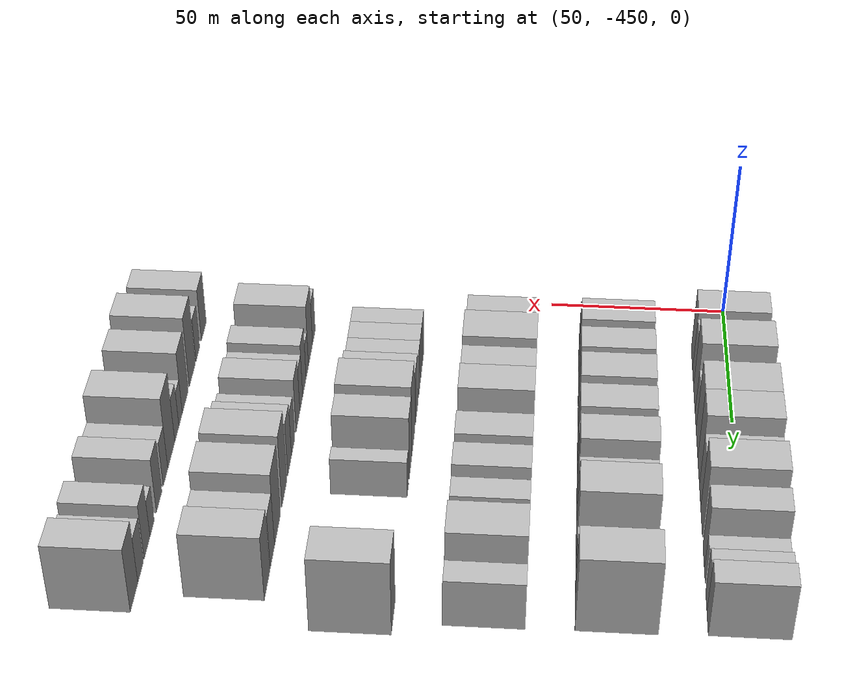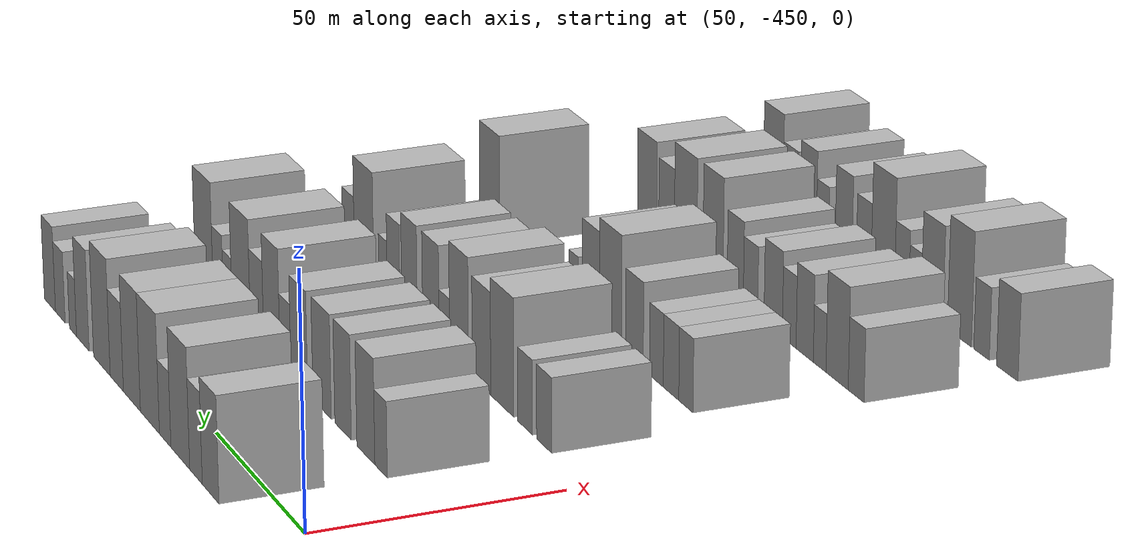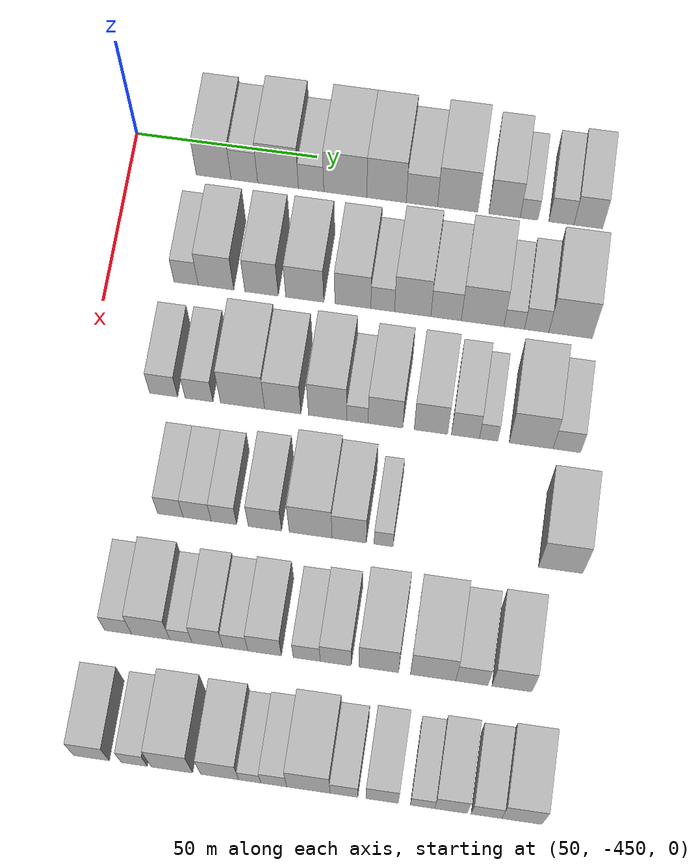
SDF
<sdf version="1.6">
 <world name="default">
  <model name="building_14">
   <static>1</static>
   <pose>50.0000 -426.9639 0 0.000000 0.000000 0.000000</pose>
   <link name="link">
    <pose>0 0 10.50 0 0 0</pose>
    <collision name="collision"><geometry><box><size>20.0000 9.5922 21.0000</size></box></geometry></collision>
    <visual name="visual">
     <cast_shadows>0</cast_shadows>
     <geometry><box><size>20.0000 9.5922 21.0000</size></box></geometry>
     <material>
      <script>
       <uri>model://HANNAS_wall/materials/scripts</uri>
       <uri>model://HANNAS_wall/materials/textures</uri>
       <name>vrc/HANNAS_wall</name>
      </script>
     </material>
    </visual>
   </link>
  </model>
  <model name="building_15">
   <static>1</static>
   <pose>50.0000 -418.4892 0 0.000000 0.000000 0.000000</pose>
   <link name="link">
    <pose>0 0 9.00 0 0 0</pose>
    <collision name="collision"><geometry><box><size>20.0000 7.3571 18.0000</size></box></geometry></collision>
    <visual name="visual">
     <cast_shadows>0</cast_shadows>
     <geometry><box><size>20.0000 7.3571 18.0000</size></box></geometry>
     <material>
      <script>
       <uri>model://HANNAS_wall/materials/scripts</uri>
       <uri>model://HANNAS_wall/materials/textures</uri>
       <name>vrc/HANNAS_wall</name>
      </script>
     </material>
    </visual>
   </link>
  </model>
  <model name="building_16">
   <static>1</static>
   <pose>50.0000 -409.1941 0 0.000000 0.000000 0.000000</pose>
   <link name="link">
    <pose>0 0 12.00 0 0 0</pose>
    <collision name="collision"><geometry><box><size>20.0000 11.2333 24.0000</size></box></geometry></collision>
    <visual name="visual">
     <cast_shadows>0</cast_shadows>
     <geometry><box><size>20.0000 11.2333 24.0000</size></box></geometry>
     <material>
      <script>
       <uri>model://HANNAS_wall/materials/scripts</uri>
       <uri>model://HANNAS_wall/materials/textures</uri>
       <name>vrc/HANNAS_wall</name>
      </script>
     </material>
    </visual>
   </link>
  </model>
  <model name="building_17">
   <static>1</static>
   <pose>50.0000 -400.0829 0 0.000000 0.000000 0.000000</pose>
   <link name="link">
    <pose>0 0 7.50 0 0 0</pose>
    <collision name="collision"><geometry><box><size>20.0000 6.9891 15.0000</size></box></geometry></collision>
    <visual name="visual">
     <cast_shadows>0</cast_shadows>
     <geometry><box><size>20.0000 6.9891 15.0000</size></box></geometry>
     <material>
      <script>
       <uri>model://HANNAS_wall/materials/scripts</uri>
       <uri>model://HANNAS_wall/materials/textures</uri>
       <name>vrc/HANNAS_wall</name>
      </script>
     </material>
    </visual>
   </link>
  </model>
  <model name="building_18">
   <static>1</static>
   <pose>50.0000 -390.6730 0 0.000000 0.000000 0.000000</pose>
   <link name="link">
    <pose>0 0 12.00 0 0 0</pose>
    <collision name="collision"><geometry><box><size>20.0000 11.8306 24.0000</size></box></geometry></collision>
    <visual name="visual">
     <cast_shadows>0</cast_shadows>
     <geometry><box><size>20.0000 11.8306 24.0000</size></box></geometry>
     <material>
      <script>
       <uri>model://HANNAS_wall/materials/scripts</uri>
       <uri>model://HANNAS_wall/materials/textures</uri>
       <name>vrc/HANNAS_wall</name>
      </script>
     </material>
    </visual>
   </link>
  </model>
  <model name="building_19">
   <static>1</static>
   <pose>50.0000 -379.3569 0 0.000000 0.000000 0.000000</pose>
   <link name="link">
    <pose>0 0 12.00 0 0 0</pose>
    <collision name="collision"><geometry><box><size>20.0000 10.8015 24.0000</size></box></geometry></collision>
    <visual name="visual">
     <cast_shadows>0</cast_shadows>
     <geometry><box><size>20.0000 10.8015 24.0000</size></box></geometry>
     <material>
      <script>
       <uri>model://HANNAS_wall/materials/scripts</uri>
       <uri>model://HANNAS_wall/materials/textures</uri>
       <name>vrc/HANNAS_wall</name>
      </script>
     </material>
    </visual>
   </link>
  </model>
  <model name="building_20">
   <static>1</static>
   <pose>50.0000 -369.6815 0 0.000000 0.000000 0.000000</pose>
   <link name="link">
    <pose>0 0 9.00 0 0 0</pose>
    <collision name="collision"><geometry><box><size>20.0000 8.5493 18.0000</size></box></geometry></collision>
    <visual name="visual">
     <cast_shadows>0</cast_shadows>
     <geometry><box><size>20.0000 8.5493 18.0000</size></box></geometry>
     <material>
      <script>
       <uri>model://HANNAS_wall/materials/scripts</uri>
       <uri>model://HANNAS_wall/materials/textures</uri>
       <name>vrc/HANNAS_wall</name>
      </script>
     </material>
    </visual>
   </link>
  </model>
  <model name="building_21">
   <static>1</static>
   <pose>50.0000 -359.9097 0 0.000000 0.000000 0.000000</pose>
   <link name="link">
    <pose>0 0 12.00 0 0 0</pose>
    <collision name="collision"><geometry><box><size>20.0000 10.9943 24.0000</size></box></geometry></collision>
    <visual name="visual">
     <cast_shadows>0</cast_shadows>
     <geometry><box><size>20.0000 10.9943 24.0000</size></box></geometry>
     <material>
      <script>
       <uri>model://HANNAS_wall/materials/scripts</uri>
       <uri>model://HANNAS_wall/materials/textures</uri>
       <name>vrc/HANNAS_wall</name>
      </script>
     </material>
    </visual>
   </link>
  </model>
  <model name="building_22">
   <static>1</static>
   <pose>50.0000 -347.1390 0 0.000000 0.000000 0.000000</pose>
   <link name="link">
    <pose>0 0 10.50 0 0 0</pose>
    <collision name="collision"><geometry><box><size>20.0000 8.5470 21.0000</size></box></geometry></collision>
    <visual name="visual">
     <cast_shadows>0</cast_shadows>
     <geometry><box><size>20.0000 8.5470 21.0000</size></box></geometry>
     <material>
      <script>
       <uri>model://HANNAS_wall/materials/scripts</uri>
       <uri>model://HANNAS_wall/materials/textures</uri>
       <name>vrc/HANNAS_wall</name>
      </script>
     </material>
    </visual>
   </link>
  </model>
  <model name="building_23">
   <static>1</static>
   <pose>50.0000 -340.4479 0 0.000000 0.000000 0.000000</pose>
   <link name="link">
    <pose>0 0 6.00 0 0 0</pose>
    <collision name="collision"><geometry><box><size>20.0000 4.8352 12.0000</size></box></geometry></collision>
    <visual name="visual">
     <cast_shadows>0</cast_shadows>
     <geometry><box><size>20.0000 4.8352 12.0000</size></box></geometry>
     <material>
      <script>
       <uri>model://HANNAS_wall/materials/scripts</uri>
       <uri>model://HANNAS_wall/materials/textures</uri>
       <name>vrc/HANNAS_wall</name>
      </script>
     </material>
    </visual>
   </link>
  </model>
  <model name="building_24">
   <static>1</static>
   <pose>50.0000 -331.6425 0 0.000000 0.000000 0.000000</pose>
   <link name="link">
    <pose>0 0 7.50 0 0 0</pose>
    <collision name="collision"><geometry><box><size>20.0000 6.7757 15.0000</size></box></geometry></collision>
    <visual name="visual">
     <cast_shadows>0</cast_shadows>
     <geometry><box><size>20.0000 6.7757 15.0000</size></box></geometry>
     <material>
      <script>
       <uri>model://HANNAS_wall/materials/scripts</uri>
       <uri>model://HANNAS_wall/materials/textures</uri>
       <name>vrc/HANNAS_wall</name>
      </script>
     </material>
    </visual>
   </link>
  </model>
  <model name="building_25">
   <static>1</static>
   <pose>50.0000 -324.3452 0 0.000000 0.000000 0.000000</pose>
   <link name="link">
    <pose>0 0 9.00 0 0 0</pose>
    <collision name="collision"><geometry><box><size>20.0000 7.8188 18.0000</size></box></geometry></collision>
    <visual name="visual">
     <cast_shadows>0</cast_shadows>
     <geometry><box><size>20.0000 7.8188 18.0000</size></box></geometry>
     <material>
      <script>
       <uri>model://HANNAS_wall/materials/scripts</uri>
       <uri>model://HANNAS_wall/materials/textures</uri>
       <name>vrc/HANNAS_wall</name>
      </script>
     </material>
    </visual>
   </link>
  </model>
  <model name="building_132">
   <static>1</static>
   <pose>82.0000 -428.9837 0 0.000000 0.000000 0.000000</pose>
   <link name="link">
    <pose>0 0 7.50 0 0 0</pose>
    <collision name="collision"><geometry><box><size>20.0000 6.5481 15.0000</size></box></geometry></collision>
    <visual name="visual">
     <cast_shadows>0</cast_shadows>
     <geometry><box><size>20.0000 6.5481 15.0000</size></box></geometry>
     <material>
      <script>
       <uri>model://HANNAS_wall/materials/scripts</uri>
       <uri>model://HANNAS_wall/materials/textures</uri>
       <name>vrc/HANNAS_wall</name>
      </script>
     </material>
    </visual>
   </link>
  </model>
  <model name="building_133">
   <static>1</static>
   <pose>82.0000 -420.8893 0 0.000000 0.000000 0.000000</pose>
   <link name="link">
    <pose>0 0 10.50 0 0 0</pose>
    <collision name="collision"><geometry><box><size>20.0000 9.6407 21.0000</size></box></geometry></collision>
    <visual name="visual">
     <cast_shadows>0</cast_shadows>
     <geometry><box><size>20.0000 9.6407 21.0000</size></box></geometry>
     <material>
      <script>
       <uri>model://HANNAS_wall/materials/scripts</uri>
       <uri>model://HANNAS_wall/materials/textures</uri>
       <name>vrc/HANNAS_wall</name>
      </script>
     </material>
    </visual>
   </link>
  </model>
  <model name="building_134">
   <static>1</static>
   <pose>82.0000 -408.5473 0 0.000000 0.000000 0.000000</pose>
   <link name="link">
    <pose>0 0 10.50 0 0 0</pose>
    <collision name="collision"><geometry><box><size>20.0000 9.0432 21.0000</size></box></geometry></collision>
    <visual name="visual">
     <cast_shadows>0</cast_shadows>
     <geometry><box><size>20.0000 9.0432 21.0000</size></box></geometry>
     <material>
      <script>
       <uri>model://HANNAS_wall/materials/scripts</uri>
       <uri>model://HANNAS_wall/materials/textures</uri>
       <name>vrc/HANNAS_wall</name>
      </script>
     </material>
    </visual>
   </link>
  </model>
  <model name="building_135">
   <static>1</static>
   <pose>82.0000 -396.8866 0 0.000000 0.000000 0.000000</pose>
   <link name="link">
    <pose>0 0 10.50 0 0 0</pose>
    <collision name="collision"><geometry><box><size>20.0000 10.2783 21.0000</size></box></geometry></collision>
    <visual name="visual">
     <cast_shadows>0</cast_shadows>
     <geometry><box><size>20.0000 10.2783 21.0000</size></box></geometry>
     <material>
      <script>
       <uri>model://HANNAS_wall/materials/scripts</uri>
       <uri>model://HANNAS_wall/materials/textures</uri>
       <name>vrc/HANNAS_wall</name>
      </script>
     </material>
    </visual>
   </link>
  </model>
  <model name="building_136">
   <static>1</static>
   <pose>82.0000 -383.9204 0 0.000000 0.000000 0.000000</pose>
   <link name="link">
    <pose>0 0 10.50 0 0 0</pose>
    <collision name="collision"><geometry><box><size>20.0000 9.6540 21.0000</size></box></geometry></collision>
    <visual name="visual">
     <cast_shadows>0</cast_shadows>
     <geometry><box><size>20.0000 9.6540 21.0000</size></box></geometry>
     <material>
      <script>
       <uri>model://HANNAS_wall/materials/scripts</uri>
       <uri>model://HANNAS_wall/materials/textures</uri>
       <name>vrc/HANNAS_wall</name>
      </script>
     </material>
    </visual>
   </link>
  </model>
  <model name="building_137">
   <static>1</static>
   <pose>82.0000 -375.9150 0 0.000000 0.000000 0.000000</pose>
   <link name="link">
    <pose>0 0 7.50 0 0 0</pose>
    <collision name="collision"><geometry><box><size>20.0000 6.3569 15.0000</size></box></geometry></collision>
    <visual name="visual">
     <cast_shadows>0</cast_shadows>
     <geometry><box><size>20.0000 6.3569 15.0000</size></box></geometry>
     <material>
      <script>
       <uri>model://HANNAS_wall/materials/scripts</uri>
       <uri>model://HANNAS_wall/materials/textures</uri>
       <name>vrc/HANNAS_wall</name>
      </script>
     </material>
    </visual>
   </link>
  </model>
  <model name="building_138">
   <static>1</static>
   <pose>82.0000 -367.8662 0 0.000000 0.000000 0.000000</pose>
   <link name="link">
    <pose>0 0 12.00 0 0 0</pose>
    <collision name="collision"><geometry><box><size>20.0000 9.7405 24.0000</size></box></geometry></collision>
    <visual name="visual">
     <cast_shadows>0</cast_shadows>
     <geometry><box><size>20.0000 9.7405 24.0000</size></box></geometry>
     <material>
      <script>
       <uri>model://HANNAS_wall/materials/scripts</uri>
       <uri>model://HANNAS_wall/materials/textures</uri>
       <name>vrc/HANNAS_wall</name>
      </script>
     </material>
    </visual>
   </link>
  </model>
  <model name="building_139">
   <static>1</static>
   <pose>82.0000 -358.9292 0 0.000000 0.000000 0.000000</pose>
   <link name="link">
    <pose>0 0 9.00 0 0 0</pose>
    <collision name="collision"><geometry><box><size>20.0000 8.1335 18.0000</size></box></geometry></collision>
    <visual name="visual">
     <cast_shadows>0</cast_shadows>
     <geometry><box><size>20.0000 8.1335 18.0000</size></box></geometry>
     <material>
      <script>
       <uri>model://HANNAS_wall/materials/scripts</uri>
       <uri>model://HANNAS_wall/materials/textures</uri>
       <name>vrc/HANNAS_wall</name>
      </script>
     </material>
    </visual>
   </link>
  </model>
  <model name="building_140">
   <static>1</static>
   <pose>82.0000 -349.1648 0 0.000000 0.000000 0.000000</pose>
   <link name="link">
    <pose>0 0 12.00 0 0 0</pose>
    <collision name="collision"><geometry><box><size>20.0000 11.3953 24.0000</size></box></geometry></collision>
    <visual name="visual">
     <cast_shadows>0</cast_shadows>
     <geometry><box><size>20.0000 11.3953 24.0000</size></box></geometry>
     <material>
      <script>
       <uri>model://HANNAS_wall/materials/scripts</uri>
       <uri>model://HANNAS_wall/materials/textures</uri>
       <name>vrc/HANNAS_wall</name>
      </script>
     </material>
    </visual>
   </link>
  </model>
  <model name="building_141">
   <static>1</static>
   <pose>82.0000 -340.7195 0 0.000000 0.000000 0.000000</pose>
   <link name="link">
    <pose>0 0 6.00 0 0 0</pose>
    <collision name="collision"><geometry><box><size>20.0000 5.4953 12.0000</size></box></geometry></collision>
    <visual name="visual">
     <cast_shadows>0</cast_shadows>
     <geometry><box><size>20.0000 5.4953 12.0000</size></box></geometry>
     <material>
      <script>
       <uri>model://HANNAS_wall/materials/scripts</uri>
       <uri>model://HANNAS_wall/materials/textures</uri>
       <name>vrc/HANNAS_wall</name>
      </script>
     </material>
    </visual>
   </link>
  </model>
  <model name="building_142">
   <static>1</static>
   <pose>82.0000 -334.7163 0 0.000000 0.000000 0.000000</pose>
   <link name="link">
    <pose>0 0 7.50 0 0 0</pose>
    <collision name="collision"><geometry><box><size>20.0000 6.5112 15.0000</size></box></geometry></collision>
    <visual name="visual">
     <cast_shadows>0</cast_shadows>
     <geometry><box><size>20.0000 6.5112 15.0000</size></box></geometry>
     <material>
      <script>
       <uri>model://HANNAS_wall/materials/scripts</uri>
       <uri>model://HANNAS_wall/materials/textures</uri>
       <name>vrc/HANNAS_wall</name>
      </script>
     </material>
    </visual>
   </link>
  </model>
  <model name="building_143">
   <static>1</static>
   <pose>82.0000 -325.6758 0 0.000000 0.000000 0.000000</pose>
   <link name="link">
    <pose>0 0 12.00 0 0 0</pose>
    <collision name="collision"><geometry><box><size>20.0000 11.5699 24.0000</size></box></geometry></collision>
    <visual name="visual">
     <cast_shadows>0</cast_shadows>
     <geometry><box><size>20.0000 11.5699 24.0000</size></box></geometry>
     <material>
      <script>
       <uri>model://HANNAS_wall/materials/scripts</uri>
       <uri>model://HANNAS_wall/materials/textures</uri>
       <name>vrc/HANNAS_wall</name>
      </script>
     </material>
    </visual>
   </link>
  </model>
  <model name="building_248">
   <static>1</static>
   <pose>114.0000 -429.3535 0 0.000000 0.000000 0.000000</pose>
   <link name="link">
    <pose>0 0 7.50 0 0 0</pose>
    <collision name="collision"><geometry><box><size>20.0000 7.4070 15.0000</size></box></geometry></collision>
    <visual name="visual">
     <cast_shadows>0</cast_shadows>
     <geometry><box><size>20.0000 7.4070 15.0000</size></box></geometry>
     <material>
      <script>
       <uri>model://HANNAS_wall/materials/scripts</uri>
       <uri>model://HANNAS_wall/materials/textures</uri>
       <name>vrc/HANNAS_wall</name>
      </script>
     </material>
    </visual>
   </link>
  </model>
  <model name="building_249">
   <static>1</static>
   <pose>114.0000 -419.9532 0 0.000000 0.000000 0.000000</pose>
   <link name="link">
    <pose>0 0 7.50 0 0 0</pose>
    <collision name="collision"><geometry><box><size>20.0000 7.3935 15.0000</size></box></geometry></collision>
    <visual name="visual">
     <cast_shadows>0</cast_shadows>
     <geometry><box><size>20.0000 7.3935 15.0000</size></box></geometry>
     <material>
      <script>
       <uri>model://HANNAS_wall/materials/scripts</uri>
       <uri>model://HANNAS_wall/materials/textures</uri>
       <name>vrc/HANNAS_wall</name>
      </script>
     </material>
    </visual>
   </link>
  </model>
  <model name="building_250">
   <static>1</static>
   <pose>114.0000 -408.4069 0 0.000000 0.000000 0.000000</pose>
   <link name="link">
    <pose>0 0 12.00 0 0 0</pose>
    <collision name="collision"><geometry><box><size>20.0000 11.6991 24.0000</size></box></geometry></collision>
    <visual name="visual">
     <cast_shadows>0</cast_shadows>
     <geometry><box><size>20.0000 11.6991 24.0000</size></box></geometry>
     <material>
      <script>
       <uri>model://HANNAS_wall/materials/scripts</uri>
       <uri>model://HANNAS_wall/materials/textures</uri>
       <name>vrc/HANNAS_wall</name>
      </script>
     </material>
    </visual>
   </link>
  </model>
  <model name="building_251">
   <static>1</static>
   <pose>114.0000 -397.7589 0 0.000000 0.000000 0.000000</pose>
   <link name="link">
    <pose>0 0 10.50 0 0 0</pose>
    <collision name="collision"><geometry><box><size>20.0000 9.5969 21.0000</size></box></geometry></collision>
    <visual name="visual">
     <cast_shadows>0</cast_shadows>
     <geometry><box><size>20.0000 9.5969 21.0000</size></box></geometry>
     <material>
      <script>
       <uri>model://HANNAS_wall/materials/scripts</uri>
       <uri>model://HANNAS_wall/materials/textures</uri>
       <name>vrc/HANNAS_wall</name>
      </script>
     </material>
    </visual>
   </link>
  </model>
  <model name="building_252">
   <static>1</static>
   <pose>114.0000 -385.9013 0 0.000000 0.000000 0.000000</pose>
   <link name="link">
    <pose>0 0 12.00 0 0 0</pose>
    <collision name="collision"><geometry><box><size>20.0000 10.1182 24.0000</size></box></geometry></collision>
    <visual name="visual">
     <cast_shadows>0</cast_shadows>
     <geometry><box><size>20.0000 10.1182 24.0000</size></box></geometry>
     <material>
      <script>
       <uri>model://HANNAS_wall/materials/scripts</uri>
       <uri>model://HANNAS_wall/materials/textures</uri>
       <name>vrc/HANNAS_wall</name>
      </script>
     </material>
    </visual>
   </link>
  </model>
  <model name="building_253">
   <static>1</static>
   <pose>114.0000 -378.0275 0 0.000000 0.000000 0.000000</pose>
   <link name="link">
    <pose>0 0 6.00 0 0 0</pose>
    <collision name="collision"><geometry><box><size>20.0000 5.6295 12.0000</size></box></geometry></collision>
    <visual name="visual">
     <cast_shadows>0</cast_shadows>
     <geometry><box><size>20.0000 5.6295 12.0000</size></box></geometry>
     <material>
      <script>
       <uri>model://HANNAS_wall/materials/scripts</uri>
       <uri>model://HANNAS_wall/materials/textures</uri>
       <name>vrc/HANNAS_wall</name>
      </script>
     </material>
    </visual>
   </link>
  </model>
  <model name="building_254">
   <static>1</static>
   <pose>114.0000 -370.6565 0 0.000000 0.000000 0.000000</pose>
   <link name="link">
    <pose>0 0 10.50 0 0 0</pose>
    <collision name="collision"><geometry><box><size>20.0000 9.1126 21.0000</size></box></geometry></collision>
    <visual name="visual">
     <cast_shadows>0</cast_shadows>
     <geometry><box><size>20.0000 9.1126 21.0000</size></box></geometry>
     <material>
      <script>
       <uri>model://HANNAS_wall/materials/scripts</uri>
       <uri>model://HANNAS_wall/materials/textures</uri>
       <name>vrc/HANNAS_wall</name>
      </script>
     </material>
    </visual>
   </link>
  </model>
  <model name="building_255">
   <static>1</static>
   <pose>114.0000 -358.7123 0 0.000000 0.000000 0.000000</pose>
   <link name="link">
    <pose>0 0 10.50 0 0 0</pose>
    <collision name="collision"><geometry><box><size>20.0000 8.7758 21.0000</size></box></geometry></collision>
    <visual name="visual">
     <cast_shadows>0</cast_shadows>
     <geometry><box><size>20.0000 8.7758 21.0000</size></box></geometry>
     <material>
      <script>
       <uri>model://HANNAS_wall/materials/scripts</uri>
       <uri>model://HANNAS_wall/materials/textures</uri>
       <name>vrc/HANNAS_wall</name>
      </script>
     </material>
    </visual>
   </link>
  </model>
  <model name="building_256">
   <static>1</static>
   <pose>114.0000 -349.6560 0 0.000000 0.000000 0.000000</pose>
   <link name="link">
    <pose>0 0 9.00 0 0 0</pose>
    <collision name="collision"><geometry><box><size>20.0000 7.3367 18.0000</size></box></geometry></collision>
    <visual name="visual">
     <cast_shadows>0</cast_shadows>
     <geometry><box><size>20.0000 7.3367 18.0000</size></box></geometry>
     <material>
      <script>
       <uri>model://HANNAS_wall/materials/scripts</uri>
       <uri>model://HANNAS_wall/materials/textures</uri>
       <name>vrc/HANNAS_wall</name>
      </script>
     </material>
    </visual>
   </link>
  </model>
  <model name="building_257">
   <static>1</static>
   <pose>114.0000 -343.5760 0 0.000000 0.000000 0.000000</pose>
   <link name="link">
    <pose>0 0 6.00 0 0 0</pose>
    <collision name="collision"><geometry><box><size>20.0000 4.8232 12.0000</size></box></geometry></collision>
    <visual name="visual">
     <cast_shadows>0</cast_shadows>
     <geometry><box><size>20.0000 4.8232 12.0000</size></box></geometry>
     <material>
      <script>
       <uri>model://HANNAS_wall/materials/scripts</uri>
       <uri>model://HANNAS_wall/materials/textures</uri>
       <name>vrc/HANNAS_wall</name>
      </script>
     </material>
    </visual>
   </link>
  </model>
  <model name="building_258">
   <static>1</static>
   <pose>114.0000 -332.4299 0 0.000000 0.000000 0.000000</pose>
   <link name="link">
    <pose>0 0 12.00 0 0 0</pose>
    <collision name="collision"><geometry><box><size>20.0000 11.4691 24.0000</size></box></geometry></collision>
    <visual name="visual">
     <cast_shadows>0</cast_shadows>
     <geometry><box><size>20.0000 11.4691 24.0000</size></box></geometry>
     <material>
      <script>
       <uri>model://HANNAS_wall/materials/scripts</uri>
       <uri>model://HANNAS_wall/materials/textures</uri>
       <name>vrc/HANNAS_wall</name>
      </script>
     </material>
    </visual>
   </link>
  </model>
  <model name="building_259">
   <static>1</static>
   <pose>114.0000 -323.1026 0 0.000000 0.000000 0.000000</pose>
   <link name="link">
    <pose>0 0 7.50 0 0 0</pose>
    <collision name="collision"><geometry><box><size>20.0000 7.1855 15.0000</size></box></geometry></collision>
    <visual name="visual">
     <cast_shadows>0</cast_shadows>
     <geometry><box><size>20.0000 7.1855 15.0000</size></box></geometry>
     <material>
      <script>
       <uri>model://HANNAS_wall/materials/scripts</uri>
       <uri>model://HANNAS_wall/materials/textures</uri>
       <name>vrc/HANNAS_wall</name>
      </script>
     </material>
    </visual>
   </link>
  </model>
  <model name="building_354">
   <static>1</static>
   <pose>146.0000 -421.8922 0 0.000000 0.000000 0.000000</pose>
   <link name="link">
    <pose>0 0 7.50 0 0 0</pose>
    <collision name="collision"><geometry><box><size>20.0000 6.6243 15.0000</size></box></geometry></collision>
    <visual name="visual">
     <cast_shadows>0</cast_shadows>
     <geometry><box><size>20.0000 6.6243 15.0000</size></box></geometry>
     <material>
      <script>
       <uri>model://HANNAS_wall/materials/scripts</uri>
       <uri>model://HANNAS_wall/materials/textures</uri>
       <name>vrc/HANNAS_wall</name>
      </script>
     </material>
    </visual>
   </link>
  </model>
  <model name="building_355">
   <static>1</static>
   <pose>146.0000 -414.9227 0 0.000000 0.000000 0.000000</pose>
   <link name="link">
    <pose>0 0 7.50 0 0 0</pose>
    <collision name="collision"><geometry><box><size>20.0000 7.3148 15.0000</size></box></geometry></collision>
    <visual name="visual">
     <cast_shadows>0</cast_shadows>
     <geometry><box><size>20.0000 7.3148 15.0000</size></box></geometry>
     <material>
      <script>
       <uri>model://HANNAS_wall/materials/scripts</uri>
       <uri>model://HANNAS_wall/materials/textures</uri>
       <name>vrc/HANNAS_wall</name>
      </script>
     </material>
    </visual>
   </link>
  </model>
  <model name="building_356">
   <static>1</static>
   <pose>146.0000 -407.9516 0 0.000000 0.000000 0.000000</pose>
   <link name="link">
    <pose>0 0 7.50 0 0 0</pose>
    <collision name="collision"><geometry><box><size>20.0000 6.6273 15.0000</size></box></geometry></collision>
    <visual name="visual">
     <cast_shadows>0</cast_shadows>
     <geometry><box><size>20.0000 6.6273 15.0000</size></box></geometry>
     <material>
      <script>
       <uri>model://HANNAS_wall/materials/scripts</uri>
       <uri>model://HANNAS_wall/materials/textures</uri>
       <name>vrc/HANNAS_wall</name>
      </script>
     </material>
    </visual>
   </link>
  </model>
  <model name="building_357">
   <static>1</static>
   <pose>146.0000 -397.3216 0 0.000000 0.000000 0.000000</pose>
   <link name="link">
    <pose>0 0 9.00 0 0 0</pose>
    <collision name="collision"><geometry><box><size>20.0000 8.6326 18.0000</size></box></geometry></collision>
    <visual name="visual">
     <cast_shadows>0</cast_shadows>
     <geometry><box><size>20.0000 8.6326 18.0000</size></box></geometry>
     <material>
      <script>
       <uri>model://HANNAS_wall/materials/scripts</uri>
       <uri>model://HANNAS_wall/materials/textures</uri>
       <name>vrc/HANNAS_wall</name>
      </script>
     </material>
    </visual>
   </link>
  </model>
  <model name="building_358">
   <static>1</static>
   <pose>146.0000 -385.4671 0 0.000000 0.000000 0.000000</pose>
   <link name="link">
    <pose>0 0 12.00 0 0 0</pose>
    <collision name="collision"><geometry><box><size>20.0000 11.0765 24.0000</size></box></geometry></collision>
    <visual name="visual">
     <cast_shadows>0</cast_shadows>
     <geometry><box><size>20.0000 11.0765 24.0000</size></box></geometry>
     <material>
      <script>
       <uri>model://HANNAS_wall/materials/scripts</uri>
       <uri>model://HANNAS_wall/materials/textures</uri>
       <name>vrc/HANNAS_wall</name>
      </script>
     </material>
    </visual>
   </link>
  </model>
  <model name="building_359">
   <static>1</static>
   <pose>146.0000 -375.5095 0 0.000000 0.000000 0.000000</pose>
   <link name="link">
    <pose>0 0 10.50 0 0 0</pose>
    <collision name="collision"><geometry><box><size>20.0000 8.8386 21.0000</size></box></geometry></collision>
    <visual name="visual">
     <cast_shadows>0</cast_shadows>
     <geometry><box><size>20.0000 8.8386 21.0000</size></box></geometry>
     <material>
      <script>
       <uri>model://HANNAS_wall/materials/scripts</uri>
       <uri>model://HANNAS_wall/materials/textures</uri>
       <name>vrc/HANNAS_wall</name>
      </script>
     </material>
    </visual>
   </link>
  </model>
  <model name="building_360">
   <static>1</static>
   <pose>146.0000 -366.6422 0 0.000000 0.000000 0.000000</pose>
   <link name="link">
    <pose>0 0 6.00 0 0 0</pose>
    <collision name="collision"><geometry><box><size>20.0000 4.8961 12.0000</size></box></geometry></collision>
    <visual name="visual">
     <cast_shadows>0</cast_shadows>
     <geometry><box><size>20.0000 4.8961 12.0000</size></box></geometry>
     <material>
      <script>
       <uri>model://HANNAS_wall/materials/scripts</uri>
       <uri>model://HANNAS_wall/materials/textures</uri>
       <name>vrc/HANNAS_wall</name>
      </script>
     </material>
    </visual>
   </link>
  </model>
  <model name="building_361">
   <static>1</static>
   <pose>146.0000 -321.1829 0 0.000000 0.000000 0.000000</pose>
   <link name="link">
    <pose>0 0 12.00 0 0 0</pose>
    <collision name="collision"><geometry><box><size>20.0000 11.3408 24.0000</size></box></geometry></collision>
    <visual name="visual">
     <cast_shadows>0</cast_shadows>
     <geometry><box><size>20.0000 11.3408 24.0000</size></box></geometry>
     <material>
      <script>
       <uri>model://HANNAS_wall/materials/scripts</uri>
       <uri>model://HANNAS_wall/materials/textures</uri>
       <name>vrc/HANNAS_wall</name>
      </script>
     </material>
    </visual>
   </link>
  </model>
  <model name="building_466">
   <static>1</static>
   <pose>178.0000 -429.5597 0 0.000000 0.000000 0.000000</pose>
   <link name="link">
    <pose>0 0 7.50 0 0 0</pose>
    <collision name="collision"><geometry><box><size>20.0000 6.8830 15.0000</size></box></geometry></collision>
    <visual name="visual">
     <cast_shadows>0</cast_shadows>
     <geometry><box><size>20.0000 6.8830 15.0000</size></box></geometry>
     <material>
      <script>
       <uri>model://HANNAS_wall/materials/scripts</uri>
       <uri>model://HANNAS_wall/materials/textures</uri>
       <name>vrc/HANNAS_wall</name>
      </script>
     </material>
    </visual>
   </link>
  </model>
  <model name="building_467">
   <static>1</static>
   <pose>178.0000 -421.2283 0 0.000000 0.000000 0.000000</pose>
   <link name="link">
    <pose>0 0 10.50 0 0 0</pose>
    <collision name="collision"><geometry><box><size>20.0000 9.7798 21.0000</size></box></geometry></collision>
    <visual name="visual">
     <cast_shadows>0</cast_shadows>
     <geometry><box><size>20.0000 9.7798 21.0000</size></box></geometry>
     <material>
      <script>
       <uri>model://HANNAS_wall/materials/scripts</uri>
       <uri>model://HANNAS_wall/materials/textures</uri>
       <name>vrc/HANNAS_wall</name>
      </script>
     </material>
    </visual>
   </link>
  </model>
  <model name="building_468">
   <static>1</static>
   <pose>178.0000 -413.5065 0 0.000000 0.000000 0.000000</pose>
   <link name="link">
    <pose>0 0 6.00 0 0 0</pose>
    <collision name="collision"><geometry><box><size>20.0000 5.6639 12.0000</size></box></geometry></collision>
    <visual name="visual">
     <cast_shadows>0</cast_shadows>
     <geometry><box><size>20.0000 5.6639 12.0000</size></box></geometry>
     <material>
      <script>
       <uri>model://HANNAS_wall/materials/scripts</uri>
       <uri>model://HANNAS_wall/materials/textures</uri>
       <name>vrc/HANNAS_wall</name>
      </script>
     </material>
    </visual>
   </link>
  </model>
  <model name="building_469">
   <static>1</static>
   <pose>178.0000 -406.7600 0 0.000000 0.000000 0.000000</pose>
   <link name="link">
    <pose>0 0 9.00 0 0 0</pose>
    <collision name="collision"><geometry><box><size>20.0000 7.8291 18.0000</size></box></geometry></collision>
    <visual name="visual">
     <cast_shadows>0</cast_shadows>
     <geometry><box><size>20.0000 7.8291 18.0000</size></box></geometry>
     <material>
      <script>
       <uri>model://HANNAS_wall/materials/scripts</uri>
       <uri>model://HANNAS_wall/materials/textures</uri>
       <name>vrc/HANNAS_wall</name>
      </script>
     </material>
    </visual>
   </link>
  </model>
  <model name="building_470">
   <static>1</static>
   <pose>178.0000 -399.6728 0 0.000000 0.000000 0.000000</pose>
   <link name="link">
    <pose>0 0 7.50 0 0 0</pose>
    <collision name="collision"><geometry><box><size>20.0000 6.3453 15.0000</size></box></geometry></collision>
    <visual name="visual">
     <cast_shadows>0</cast_shadows>
     <geometry><box><size>20.0000 6.3453 15.0000</size></box></geometry>
     <material>
      <script>
       <uri>model://HANNAS_wall/materials/scripts</uri>
       <uri>model://HANNAS_wall/materials/textures</uri>
       <name>vrc/HANNAS_wall</name>
      </script>
     </material>
    </visual>
   </link>
  </model>
  <model name="building_471">
   <static>1</static>
   <pose>178.0000 -392.2343 0 0.000000 0.000000 0.000000</pose>
   <link name="link">
    <pose>0 0 9.00 0 0 0</pose>
    <collision name="collision"><geometry><box><size>20.0000 8.5316 18.0000</size></box></geometry></collision>
    <visual name="visual">
     <cast_shadows>0</cast_shadows>
     <geometry><box><size>20.0000 8.5316 18.0000</size></box></geometry>
     <material>
      <script>
       <uri>model://HANNAS_wall/materials/scripts</uri>
       <uri>model://HANNAS_wall/materials/textures</uri>
       <name>vrc/HANNAS_wall</name>
      </script>
     </material>
    </visual>
   </link>
  </model>
  <model name="building_472">
   <static>1</static>
   <pose>178.0000 -381.5538 0 0.000000 0.000000 0.000000</pose>
   <link name="link">
    <pose>0 0 7.50 0 0 0</pose>
    <collision name="collision"><geometry><box><size>20.0000 6.8296 15.0000</size></box></geometry></collision>
    <visual name="visual">
     <cast_shadows>0</cast_shadows>
     <geometry><box><size>20.0000 6.8296 15.0000</size></box></geometry>
     <material>
      <script>
       <uri>model://HANNAS_wall/materials/scripts</uri>
       <uri>model://HANNAS_wall/materials/textures</uri>
       <name>vrc/HANNAS_wall</name>
      </script>
     </material>
    </visual>
   </link>
  </model>
  <model name="building_473">
   <static>1</static>
   <pose>178.0000 -374.2193 0 0.000000 0.000000 0.000000</pose>
   <link name="link">
    <pose>0 0 9.00 0 0 0</pose>
    <collision name="collision"><geometry><box><size>20.0000 7.8394 18.0000</size></box></geometry></collision>
    <visual name="visual">
     <cast_shadows>0</cast_shadows>
     <geometry><box><size>20.0000 7.8394 18.0000</size></box></geometry>
     <material>
      <script>
       <uri>model://HANNAS_wall/materials/scripts</uri>
       <uri>model://HANNAS_wall/materials/textures</uri>
       <name>vrc/HANNAS_wall</name>
      </script>
     </material>
    </visual>
   </link>
  </model>
  <model name="building_474">
   <static>1</static>
   <pose>178.0000 -363.3285 0 0.000000 0.000000 0.000000</pose>
   <link name="link">
    <pose>0 0 12.00 0 0 0</pose>
    <collision name="collision"><geometry><box><size>20.0000 9.9422 24.0000</size></box></geometry></collision>
    <visual name="visual">
     <cast_shadows>0</cast_shadows>
     <geometry><box><size>20.0000 9.9422 24.0000</size></box></geometry>
     <material>
      <script>
       <uri>model://HANNAS_wall/materials/scripts</uri>
       <uri>model://HANNAS_wall/materials/textures</uri>
       <name>vrc/HANNAS_wall</name>
      </script>
     </material>
    </visual>
   </link>
  </model>
  <model name="building_475">
   <static>1</static>
   <pose>178.0000 -349.6474 0 0.000000 0.000000 0.000000</pose>
   <link name="link">
    <pose>0 0 12.00 0 0 0</pose>
    <collision name="collision"><geometry><box><size>20.0000 11.4200 24.0000</size></box></geometry></collision>
    <visual name="visual">
     <cast_shadows>0</cast_shadows>
     <geometry><box><size>20.0000 11.4200 24.0000</size></box></geometry>
     <material>
      <script>
       <uri>model://HANNAS_wall/materials/scripts</uri>
       <uri>model://HANNAS_wall/materials/textures</uri>
       <name>vrc/HANNAS_wall</name>
      </script>
     </material>
    </visual>
   </link>
  </model>
  <model name="building_476">
   <static>1</static>
   <pose>178.0000 -339.8916 0 0.000000 0.000000 0.000000</pose>
   <link name="link">
    <pose>0 0 9.00 0 0 0</pose>
    <collision name="collision"><geometry><box><size>20.0000 8.0916 18.0000</size></box></geometry></collision>
    <visual name="visual">
     <cast_shadows>0</cast_shadows>
     <geometry><box><size>20.0000 8.0916 18.0000</size></box></geometry>
     <material>
      <script>
       <uri>model://HANNAS_wall/materials/scripts</uri>
       <uri>model://HANNAS_wall/materials/textures</uri>
       <name>vrc/HANNAS_wall</name>
      </script>
     </material>
    </visual>
   </link>
  </model>
  <model name="building_477">
   <static>1</static>
   <pose>178.0000 -329.8254 0 0.000000 0.000000 0.000000</pose>
   <link name="link">
    <pose>0 0 10.50 0 0 0</pose>
    <collision name="collision"><geometry><box><size>20.0000 10.0408 21.0000</size></box></geometry></collision>
    <visual name="visual">
     <cast_shadows>0</cast_shadows>
     <geometry><box><size>20.0000 10.0408 21.0000</size></box></geometry>
     <material>
      <script>
       <uri>model://HANNAS_wall/materials/scripts</uri>
       <uri>model://HANNAS_wall/materials/textures</uri>
       <name>vrc/HANNAS_wall</name>
      </script>
     </material>
    </visual>
   </link>
  </model>
  <model name="building_586">
   <static>1</static>
   <pose>210.0000 -430.2315 0 0.000000 0.000000 0.000000</pose>
   <link name="link">
    <pose>0 0 9.00 0 0 0</pose>
    <collision name="collision"><geometry><box><size>20.0000 8.8397 18.0000</size></box></geometry></collision>
    <visual name="visual">
     <cast_shadows>0</cast_shadows>
     <geometry><box><size>20.0000 8.8397 18.0000</size></box></geometry>
     <material>
      <script>
       <uri>model://HANNAS_wall/materials/scripts</uri>
       <uri>model://HANNAS_wall/materials/textures</uri>
       <name>vrc/HANNAS_wall</name>
      </script>
     </material>
    </visual>
   </link>
  </model>
  <model name="building_587">
   <static>1</static>
   <pose>210.0000 -419.5481 0 0.000000 0.000000 0.000000</pose>
   <link name="link">
    <pose>0 0 7.50 0 0 0</pose>
    <collision name="collision"><geometry><box><size>20.0000 6.5271 15.0000</size></box></geometry></collision>
    <visual name="visual">
     <cast_shadows>0</cast_shadows>
     <geometry><box><size>20.0000 6.5271 15.0000</size></box></geometry>
     <material>
      <script>
       <uri>model://HANNAS_wall/materials/scripts</uri>
       <uri>model://HANNAS_wall/materials/textures</uri>
       <name>vrc/HANNAS_wall</name>
      </script>
     </material>
    </visual>
   </link>
  </model>
  <model name="building_588">
   <static>1</static>
   <pose>210.0000 -410.1335 0 0.000000 0.000000 0.000000</pose>
   <link name="link">
    <pose>0 0 12.00 0 0 0</pose>
    <collision name="collision"><geometry><box><size>20.0000 10.3022 24.0000</size></box></geometry></collision>
    <visual name="visual">
     <cast_shadows>0</cast_shadows>
     <geometry><box><size>20.0000 10.3022 24.0000</size></box></geometry>
     <material>
      <script>
       <uri>model://HANNAS_wall/materials/scripts</uri>
       <uri>model://HANNAS_wall/materials/textures</uri>
       <name>vrc/HANNAS_wall</name>
      </script>
     </material>
    </visual>
   </link>
  </model>
  <model name="building_589">
   <static>1</static>
   <pose>210.0000 -398.2264 0 0.000000 0.000000 0.000000</pose>
   <link name="link">
    <pose>0 0 10.50 0 0 0</pose>
    <collision name="collision"><geometry><box><size>20.0000 9.5118 21.0000</size></box></geometry></collision>
    <visual name="visual">
     <cast_shadows>0</cast_shadows>
     <geometry><box><size>20.0000 9.5118 21.0000</size></box></geometry>
     <material>
      <script>
       <uri>model://HANNAS_wall/materials/scripts</uri>
       <uri>model://HANNAS_wall/materials/textures</uri>
       <name>vrc/HANNAS_wall</name>
      </script>
     </material>
    </visual>
   </link>
  </model>
  <model name="building_590">
   <static>1</static>
   <pose>210.0000 -390.7528 0 0.000000 0.000000 0.000000</pose>
   <link name="link">
    <pose>0 0 6.00 0 0 0</pose>
    <collision name="collision"><geometry><box><size>20.0000 5.4354 12.0000</size></box></geometry></collision>
    <visual name="visual">
     <cast_shadows>0</cast_shadows>
     <geometry><box><size>20.0000 5.4354 12.0000</size></box></geometry>
     <material>
      <script>
       <uri>model://HANNAS_wall/materials/scripts</uri>
       <uri>model://HANNAS_wall/materials/textures</uri>
       <name>vrc/HANNAS_wall</name>
      </script>
     </material>
    </visual>
   </link>
  </model>
  <model name="building_591">
   <static>1</static>
   <pose>210.0000 -384.8062 0 0.000000 0.000000 0.000000</pose>
   <link name="link">
    <pose>0 0 7.50 0 0 0</pose>
    <collision name="collision"><geometry><box><size>20.0000 6.4579 15.0000</size></box></geometry></collision>
    <visual name="visual">
     <cast_shadows>0</cast_shadows>
     <geometry><box><size>20.0000 6.4579 15.0000</size></box></geometry>
     <material>
      <script>
       <uri>model://HANNAS_wall/materials/scripts</uri>
       <uri>model://HANNAS_wall/materials/textures</uri>
       <name>vrc/HANNAS_wall</name>
      </script>
     </material>
    </visual>
   </link>
  </model>
  <model name="building_592">
   <static>1</static>
   <pose>210.0000 -376.2147 0 0.000000 0.000000 0.000000</pose>
   <link name="link">
    <pose>0 0 12.00 0 0 0</pose>
    <collision name="collision"><geometry><box><size>20.0000 10.7251 24.0000</size></box></geometry></collision>
    <visual name="visual">
     <cast_shadows>0</cast_shadows>
     <geometry><box><size>20.0000 10.7251 24.0000</size></box></geometry>
     <material>
      <script>
       <uri>model://HANNAS_wall/materials/scripts</uri>
       <uri>model://HANNAS_wall/materials/textures</uri>
       <name>vrc/HANNAS_wall</name>
      </script>
     </material>
    </visual>
   </link>
  </model>
  <model name="building_593">
   <static>1</static>
   <pose>210.0000 -367.4174 0 0.000000 0.000000 0.000000</pose>
   <link name="link">
    <pose>0 0 7.50 0 0 0</pose>
    <collision name="collision"><geometry><box><size>20.0000 6.8696 15.0000</size></box></geometry></collision>
    <visual name="visual">
     <cast_shadows>0</cast_shadows>
     <geometry><box><size>20.0000 6.8696 15.0000</size></box></geometry>
     <material>
      <script>
       <uri>model://HANNAS_wall/materials/scripts</uri>
       <uri>model://HANNAS_wall/materials/textures</uri>
       <name>vrc/HANNAS_wall</name>
      </script>
     </material>
    </visual>
   </link>
  </model>
  <model name="building_594">
   <static>1</static>
   <pose>210.0000 -357.9921 0 0.000000 0.000000 0.000000</pose>
   <link name="link">
    <pose>0 0 9.00 0 0 0</pose>
    <collision name="collision"><geometry><box><size>20.0000 7.9809 18.0000</size></box></geometry></collision>
    <visual name="visual">
     <cast_shadows>0</cast_shadows>
     <geometry><box><size>20.0000 7.9809 18.0000</size></box></geometry>
     <material>
      <script>
       <uri>model://HANNAS_wall/materials/scripts</uri>
       <uri>model://HANNAS_wall/materials/textures</uri>
       <name>vrc/HANNAS_wall</name>
      </script>
     </material>
    </visual>
   </link>
  </model>
  <model name="building_595">
   <static>1</static>
   <pose>210.0000 -348.0234 0 0.000000 0.000000 0.000000</pose>
   <link name="link">
    <pose>0 0 6.00 0 0 0</pose>
    <collision name="collision"><geometry><box><size>20.0000 5.9564 12.0000</size></box></geometry></collision>
    <visual name="visual">
     <cast_shadows>0</cast_shadows>
     <geometry><box><size>20.0000 5.9564 12.0000</size></box></geometry>
     <material>
      <script>
       <uri>model://HANNAS_wall/materials/scripts</uri>
       <uri>model://HANNAS_wall/materials/textures</uri>
       <name>vrc/HANNAS_wall</name>
      </script>
     </material>
    </visual>
   </link>
  </model>
  <model name="building_596">
   <static>1</static>
   <pose>210.0000 -341.0354 0 0.000000 0.000000 0.000000</pose>
   <link name="link">
    <pose>0 0 9.00 0 0 0</pose>
    <collision name="collision"><geometry><box><size>20.0000 8.0197 18.0000</size></box></geometry></collision>
    <visual name="visual">
     <cast_shadows>0</cast_shadows>
     <geometry><box><size>20.0000 8.0197 18.0000</size></box></geometry>
     <material>
      <script>
       <uri>model://HANNAS_wall/materials/scripts</uri>
       <uri>model://HANNAS_wall/materials/textures</uri>
       <name>vrc/HANNAS_wall</name>
      </script>
     </material>
    </visual>
   </link>
  </model>
  <model name="building_597">
   <static>1</static>
   <pose>210.0000 -332.2992 0 0.000000 0.000000 0.000000</pose>
   <link name="link">
    <pose>0 0 7.50 0 0 0</pose>
    <collision name="collision"><geometry><box><size>20.0000 7.4528 15.0000</size></box></geometry></collision>
    <visual name="visual">
     <cast_shadows>0</cast_shadows>
     <geometry><box><size>20.0000 7.4528 15.0000</size></box></geometry>
     <material>
      <script>
       <uri>model://HANNAS_wall/materials/scripts</uri>
       <uri>model://HANNAS_wall/materials/textures</uri>
       <name>vrc/HANNAS_wall</name>
      </script>
     </material>
    </visual>
   </link>
  </model>
  <model name="building_598">
   <static>1</static>
   <pose>210.0000 -323.6150 0 0.000000 0.000000 0.000000</pose>
   <link name="link">
    <pose>0 0 10.50 0 0 0</pose>
    <collision name="collision"><geometry><box><size>20.0000 9.9158 21.0000</size></box></geometry></collision>
    <visual name="visual">
     <cast_shadows>0</cast_shadows>
     <geometry><box><size>20.0000 9.9158 21.0000</size></box></geometry>
     <material>
      <script>
       <uri>model://HANNAS_wall/materials/scripts</uri>
       <uri>model://HANNAS_wall/materials/textures</uri>
       <name>vrc/HANNAS_wall</name>
      </script>
     </material>
    </visual>
   </link>
  </model>
 </world>
</sdf>
